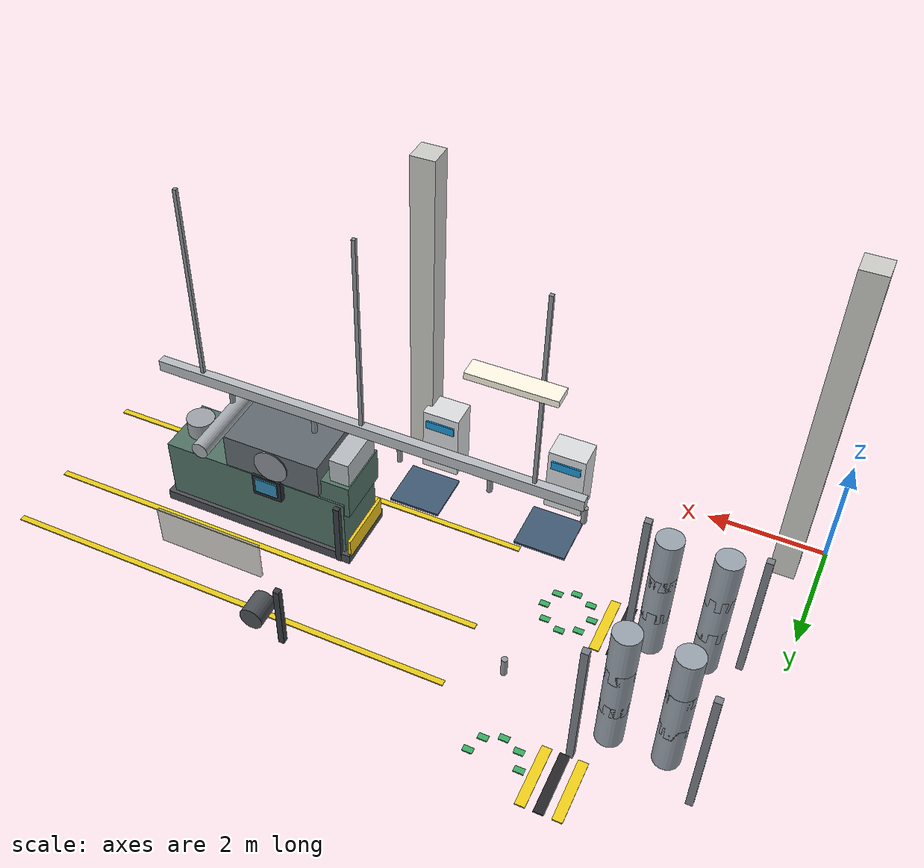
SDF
<sdf version="1.10">
 <world name="textile_mill">
  <model name="col_0">
   <static>true</static>
   <pose>0.550 0.550 3.000 0 0 0</pose>
   <link name="l">
    <collision name="c"><geometry><box><size>0.420 0.420 6.000</size></box></geometry></collision>
    <visual name="v">
     <geometry><box><size>0.420 0.420 6.000</size></box></geometry>
     <material>
      <ambient>0.800 0.800 0.780 1.0</ambient>
      <diffuse>0.800 0.800 0.780 1.0</diffuse>
      <specular>0.18 0.18 0.18 1</specular>
      <pbr><metal><roughness>0.85</roughness><metalness>0.0</metalness></metal></pbr>
     </material>
    </visual>
   </link>
  </model>
  <model name="col_2">
   <static>true</static>
   <pose>7.050 0.550 3.000 0 0 0</pose>
   <link name="l">
    <collision name="c"><geometry><box><size>0.420 0.420 6.000</size></box></geometry></collision>
    <visual name="v">
     <geometry><box><size>0.420 0.420 6.000</size></box></geometry>
     <material>
      <ambient>0.800 0.800 0.780 1.0</ambient>
      <diffuse>0.800 0.800 0.780 1.0</diffuse>
      <specular>0.18 0.18 0.18 1</specular>
      <pbr><metal><roughness>0.85</roughness><metalness>0.0</metalness></metal></pbr>
     </material>
    </visual>
   </link>
  </model>
  <model name="lamp_0_0">
   <static>true</static>
   <pose>4.200 4.000 5.280 0 0 0</pose>
   <link name="l">
    <collision name="c"><geometry><box><size>1.300 0.300 0.100</size></box></geometry></collision>
    <visual name="v">
     <geometry><box><size>1.300 0.300 0.100</size></box></geometry>
     <material>
      <ambient>1.000 0.980 0.900 1.0</ambient>
      <diffuse>1.000 0.980 0.900 1.0</diffuse>
      <specular>0.18 0.18 0.18 1</specular>
      <pbr><metal><roughness>0.3</roughness><metalness>0.0</metalness></metal></pbr>
     </material>
    </visual>
   </link>
  </model>
  <model name="cln_carding_0">
   <static>true</static>
   <pose>7.000 3.000 2.520 0 0 0</pose>
   <link name="l">
    <collision name="c"><geometry><box><size>7.300 0.150 0.200</size></box></geometry></collision>
    <visual name="v">
     <geometry><box><size>7.300 0.150 0.200</size></box></geometry>
     <material>
      <ambient>0.720 0.740 0.760 1.0</ambient>
      <diffuse>0.720 0.740 0.760 1.0</diffuse>
      <specular>0.18 0.18 0.18 1</specular>
      <pbr><metal><roughness>0.35</roughness><metalness>0.5</metalness></metal></pbr>
     </material>
    </visual>
   </link>
  </model>
  <model name="clnz_carding_0_0">
   <static>true</static>
   <pose>3.350 3.000 2.280 0.0000 0.0000 0.0000</pose>
   <link name="l">
    <collision name="c">
     <geometry><cylinder><radius>0.045</radius><length>0.300</length></cylinder></geometry>
    </collision>
    <visual name="v">
     <geometry><cylinder><radius>0.045</radius><length>0.300</length></cylinder></geometry>
     <material>
      <ambient>0.580 0.600 0.620 1.0</ambient>
      <diffuse>0.580 0.600 0.620 1.0</diffuse>
      <specular>0.18 0.18 0.18 1</specular>
      <pbr><metal><roughness>0.35</roughness><metalness>0.5</metalness></metal></pbr>
     </material>
    </visual>
   </link>
  </model>
  <model name="clnz_carding_0_1">
   <static>true</static>
   <pose>4.850 3.000 2.280 0.0000 0.0000 0.0000</pose>
   <link name="l">
    <collision name="c">
     <geometry><cylinder><radius>0.045</radius><length>0.300</length></cylinder></geometry>
    </collision>
    <visual name="v">
     <geometry><cylinder><radius>0.045</radius><length>0.300</length></cylinder></geometry>
     <material>
      <ambient>0.580 0.600 0.620 1.0</ambient>
      <diffuse>0.580 0.600 0.620 1.0</diffuse>
      <specular>0.18 0.18 0.18 1</specular>
      <pbr><metal><roughness>0.35</roughness><metalness>0.5</metalness></metal></pbr>
     </material>
    </visual>
   </link>
  </model>
  <model name="clnz_carding_0_2">
   <static>true</static>
   <pose>6.350 3.000 2.280 0.0000 0.0000 0.0000</pose>
   <link name="l">
    <collision name="c">
     <geometry><cylinder><radius>0.045</radius><length>0.300</length></cylinder></geometry>
    </collision>
    <visual name="v">
     <geometry><cylinder><radius>0.045</radius><length>0.300</length></cylinder></geometry>
     <material>
      <ambient>0.580 0.600 0.620 1.0</ambient>
      <diffuse>0.580 0.600 0.620 1.0</diffuse>
      <specular>0.18 0.18 0.18 1</specular>
      <pbr><metal><roughness>0.35</roughness><metalness>0.5</metalness></metal></pbr>
     </material>
    </visual>
   </link>
  </model>
  <model name="clnz_carding_0_3">
   <static>true</static>
   <pose>7.850 3.000 2.280 0.0000 0.0000 0.0000</pose>
   <link name="l">
    <collision name="c">
     <geometry><cylinder><radius>0.045</radius><length>0.300</length></cylinder></geometry>
    </collision>
    <visual name="v">
     <geometry><cylinder><radius>0.045</radius><length>0.300</length></cylinder></geometry>
     <material>
      <ambient>0.580 0.600 0.620 1.0</ambient>
      <diffuse>0.580 0.600 0.620 1.0</diffuse>
      <specular>0.18 0.18 0.18 1</specular>
      <pbr><metal><roughness>0.35</roughness><metalness>0.5</metalness></metal></pbr>
     </material>
    </visual>
   </link>
  </model>
  <model name="clnz_carding_0_4">
   <static>true</static>
   <pose>9.350 3.000 2.280 0.0000 0.0000 0.0000</pose>
   <link name="l">
    <collision name="c">
     <geometry><cylinder><radius>0.045</radius><length>0.300</length></cylinder></geometry>
    </collision>
    <visual name="v">
     <geometry><cylinder><radius>0.045</radius><length>0.300</length></cylinder></geometry>
     <material>
      <ambient>0.580 0.600 0.620 1.0</ambient>
      <diffuse>0.580 0.600 0.620 1.0</diffuse>
      <specular>0.18 0.18 0.18 1</specular>
      <pbr><metal><roughness>0.35</roughness><metalness>0.5</metalness></metal></pbr>
     </material>
    </visual>
   </link>
  </model>
  <model name="clnh_carding_0_0">
   <static>true</static>
   <pose>4.150 3.000 4.260 0 0 0</pose>
   <link name="l">
    <collision name="c"><geometry><box><size>0.060 0.060 3.480</size></box></geometry></collision>
    <visual name="v">
     <geometry><box><size>0.060 0.060 3.480</size></box></geometry>
     <material>
      <ambient>0.550 0.570 0.590 1.0</ambient>
      <diffuse>0.550 0.570 0.590 1.0</diffuse>
      <specular>0.18 0.18 0.18 1</specular>
      <pbr><metal><roughness>0.65</roughness><metalness>0.6</metalness></metal></pbr>
     </material>
    </visual>
   </link>
  </model>
  <model name="clnh_carding_0_1">
   <static>true</static>
   <pose>7.000 3.000 4.260 0 0 0</pose>
   <link name="l">
    <collision name="c"><geometry><box><size>0.060 0.060 3.480</size></box></geometry></collision>
    <visual name="v">
     <geometry><box><size>0.060 0.060 3.480</size></box></geometry>
     <material>
      <ambient>0.550 0.570 0.590 1.0</ambient>
      <diffuse>0.550 0.570 0.590 1.0</diffuse>
      <specular>0.18 0.18 0.18 1</specular>
      <pbr><metal><roughness>0.65</roughness><metalness>0.6</metalness></metal></pbr>
     </material>
    </visual>
   </link>
  </model>
  <model name="clnh_carding_0_2">
   <static>true</static>
   <pose>9.850 3.000 4.260 0 0 0</pose>
   <link name="l">
    <collision name="c"><geometry><box><size>0.060 0.060 3.480</size></box></geometry></collision>
    <visual name="v">
     <geometry><box><size>0.060 0.060 3.480</size></box></geometry>
     <material>
      <ambient>0.550 0.570 0.590 1.0</ambient>
      <diffuse>0.550 0.570 0.590 1.0</diffuse>
      <specular>0.18 0.18 0.18 1</specular>
      <pbr><metal><roughness>0.65</roughness><metalness>0.6</metalness></metal></pbr>
     </material>
    </visual>
   </link>
  </model>
  <model name="clnz_carding_1_0">
   <static>true</static>
   <pose>3.350 6.000 2.280 0.0000 0.0000 0.0000</pose>
   <link name="l">
    <collision name="c">
     <geometry><cylinder><radius>0.045</radius><length>0.300</length></cylinder></geometry>
    </collision>
    <visual name="v">
     <geometry><cylinder><radius>0.045</radius><length>0.300</length></cylinder></geometry>
     <material>
      <ambient>0.580 0.600 0.620 1.0</ambient>
      <diffuse>0.580 0.600 0.620 1.0</diffuse>
      <specular>0.18 0.18 0.18 1</specular>
      <pbr><metal><roughness>0.35</roughness><metalness>0.5</metalness></metal></pbr>
     </material>
    </visual>
   </link>
  </model>
  <model name="line_carding_3.0_a">
   <static>true</static>
   <pose>8.550 2.100 0.012 0 0 0</pose>
   <link name="l">
    <visual name="v">
     <geometry><box><size>7.900 0.100 0.020</size></box></geometry>
     <material>
      <ambient>0.920 0.800 0.100 1.0</ambient>
      <diffuse>0.920 0.800 0.100 1.0</diffuse>
      <specular>0.18 0.18 0.18 1</specular>
      <pbr><metal><roughness>0.65</roughness><metalness>0.0</metalness></metal></pbr>
     </material>
    </visual>
   </link>
  </model>
  <model name="line_carding_3.0_b">
   <static>true</static>
   <pose>8.550 3.900 0.012 0 0 0</pose>
   <link name="l">
    <visual name="v">
     <geometry><box><size>7.900 0.100 0.020</size></box></geometry>
     <material>
      <ambient>0.920 0.800 0.100 1.0</ambient>
      <diffuse>0.920 0.800 0.100 1.0</diffuse>
      <specular>0.18 0.18 0.18 1</specular>
      <pbr><metal><roughness>0.65</roughness><metalness>0.0</metalness></metal></pbr>
     </material>
    </visual>
   </link>
  </model>
  <model name="line_carding_6.0_a">
   <static>true</static>
   <pose>8.550 5.100 0.012 0 0 0</pose>
   <link name="l">
    <visual name="v">
     <geometry><box><size>7.900 0.100 0.020</size></box></geometry>
     <material>
      <ambient>0.920 0.800 0.100 1.0</ambient>
      <diffuse>0.920 0.800 0.100 1.0</diffuse>
      <specular>0.18 0.18 0.18 1</specular>
      <pbr><metal><roughness>0.65</roughness><metalness>0.0</metalness></metal></pbr>
     </material>
    </visual>
   </link>
  </model>
  <model name="slot_storage_empty_slot_0_0">
   <static>true</static>
   <pose>3.800 3.000 0.012 0 0 0</pose>
   <link name="l">
    <visual name="v">
     <geometry><box><size>0.160 0.100 0.020</size></box></geometry>
     <material>
      <ambient>0.220 0.680 0.380 1.0</ambient>
      <diffuse>0.220 0.680 0.380 1.0</diffuse>
      <specular>0.18 0.18 0.18 1</specular>
      <pbr><metal><roughness>0.65</roughness><metalness>0.0</metalness></metal></pbr>
     </material>
    </visual>
   </link>
  </model>
  <model name="slot_storage_empty_slot_0_1">
   <static>true</static>
   <pose>3.683 3.283 0.012 0 0 0</pose>
   <link name="l">
    <visual name="v">
     <geometry><box><size>0.160 0.100 0.020</size></box></geometry>
     <material>
      <ambient>0.220 0.680 0.380 1.0</ambient>
      <diffuse>0.220 0.680 0.380 1.0</diffuse>
      <specular>0.18 0.18 0.18 1</specular>
      <pbr><metal><roughness>0.65</roughness><metalness>0.0</metalness></metal></pbr>
     </material>
    </visual>
   </link>
  </model>
  <model name="slot_storage_empty_slot_0_2">
   <static>true</static>
   <pose>3.400 3.400 0.012 0 0 0</pose>
   <link name="l">
    <visual name="v">
     <geometry><box><size>0.160 0.100 0.020</size></box></geometry>
     <material>
      <ambient>0.220 0.680 0.380 1.0</ambient>
      <diffuse>0.220 0.680 0.380 1.0</diffuse>
      <specular>0.18 0.18 0.18 1</specular>
      <pbr><metal><roughness>0.65</roughness><metalness>0.0</metalness></metal></pbr>
     </material>
    </visual>
   </link>
  </model>
  <model name="slot_storage_empty_slot_0_3">
   <static>true</static>
   <pose>3.117 3.283 0.012 0 0 0</pose>
   <link name="l">
    <visual name="v">
     <geometry><box><size>0.160 0.100 0.020</size></box></geometry>
     <material>
      <ambient>0.220 0.680 0.380 1.0</ambient>
      <diffuse>0.220 0.680 0.380 1.0</diffuse>
      <specular>0.18 0.18 0.18 1</specular>
      <pbr><metal><roughness>0.65</roughness><metalness>0.0</metalness></metal></pbr>
     </material>
    </visual>
   </link>
  </model>
  <model name="slot_storage_empty_slot_0_4">
   <static>true</static>
   <pose>3.000 3.000 0.012 0 0 0</pose>
   <link name="l">
    <visual name="v">
     <geometry><box><size>0.160 0.100 0.020</size></box></geometry>
     <material>
      <ambient>0.220 0.680 0.380 1.0</ambient>
      <diffuse>0.220 0.680 0.380 1.0</diffuse>
      <specular>0.18 0.18 0.18 1</specular>
      <pbr><metal><roughness>0.65</roughness><metalness>0.0</metalness></metal></pbr>
     </material>
    </visual>
   </link>
  </model>
  <model name="slot_storage_empty_slot_0_5">
   <static>true</static>
   <pose>3.117 2.717 0.012 0 0 0</pose>
   <link name="l">
    <visual name="v">
     <geometry><box><size>0.160 0.100 0.020</size></box></geometry>
     <material>
      <ambient>0.220 0.680 0.380 1.0</ambient>
      <diffuse>0.220 0.680 0.380 1.0</diffuse>
      <specular>0.18 0.18 0.18 1</specular>
      <pbr><metal><roughness>0.65</roughness><metalness>0.0</metalness></metal></pbr>
     </material>
    </visual>
   </link>
  </model>
  <model name="slot_storage_empty_slot_0_6">
   <static>true</static>
   <pose>3.400 2.600 0.012 0 0 0</pose>
   <link name="l">
    <visual name="v">
     <geometry><box><size>0.160 0.100 0.020</size></box></geometry>
     <material>
      <ambient>0.220 0.680 0.380 1.0</ambient>
      <diffuse>0.220 0.680 0.380 1.0</diffuse>
      <specular>0.18 0.18 0.18 1</specular>
      <pbr><metal><roughness>0.65</roughness><metalness>0.0</metalness></metal></pbr>
     </material>
    </visual>
   </link>
  </model>
  <model name="slot_storage_empty_slot_0_7">
   <static>true</static>
   <pose>3.683 2.717 0.012 0 0 0</pose>
   <link name="l">
    <visual name="v">
     <geometry><box><size>0.160 0.100 0.020</size></box></geometry>
     <material>
      <ambient>0.220 0.680 0.380 1.0</ambient>
      <diffuse>0.220 0.680 0.380 1.0</diffuse>
      <specular>0.18 0.18 0.18 1</specular>
      <pbr><metal><roughness>0.65</roughness><metalness>0.0</metalness></metal></pbr>
     </material>
    </visual>
   </link>
  </model>
  <model name="slot_storage_empty_slot_1_0">
   <static>true</static>
   <pose>3.800 6.000 0.012 0 0 0</pose>
   <link name="l">
    <visual name="v">
     <geometry><box><size>0.160 0.100 0.020</size></box></geometry>
     <material>
      <ambient>0.220 0.680 0.380 1.0</ambient>
      <diffuse>0.220 0.680 0.380 1.0</diffuse>
      <specular>0.18 0.18 0.18 1</specular>
      <pbr><metal><roughness>0.65</roughness><metalness>0.0</metalness></metal></pbr>
     </material>
    </visual>
   </link>
  </model>
  <model name="slot_storage_empty_slot_1_4">
   <static>true</static>
   <pose>3.000 6.000 0.012 0 0 0</pose>
   <link name="l">
    <visual name="v">
     <geometry><box><size>0.160 0.100 0.020</size></box></geometry>
     <material>
      <ambient>0.220 0.680 0.380 1.0</ambient>
      <diffuse>0.220 0.680 0.380 1.0</diffuse>
      <specular>0.18 0.18 0.18 1</specular>
      <pbr><metal><roughness>0.65</roughness><metalness>0.0</metalness></metal></pbr>
     </material>
    </visual>
   </link>
  </model>
  <model name="slot_storage_empty_slot_1_5">
   <static>true</static>
   <pose>3.117 5.717 0.012 0 0 0</pose>
   <link name="l">
    <visual name="v">
     <geometry><box><size>0.160 0.100 0.020</size></box></geometry>
     <material>
      <ambient>0.220 0.680 0.380 1.0</ambient>
      <diffuse>0.220 0.680 0.380 1.0</diffuse>
      <specular>0.18 0.18 0.18 1</specular>
      <pbr><metal><roughness>0.65</roughness><metalness>0.0</metalness></metal></pbr>
     </material>
    </visual>
   </link>
  </model>
  <model name="slot_storage_empty_slot_1_6">
   <static>true</static>
   <pose>3.400 5.600 0.012 0 0 0</pose>
   <link name="l">
    <visual name="v">
     <geometry><box><size>0.160 0.100 0.020</size></box></geometry>
     <material>
      <ambient>0.220 0.680 0.380 1.0</ambient>
      <diffuse>0.220 0.680 0.380 1.0</diffuse>
      <specular>0.18 0.18 0.18 1</specular>
      <pbr><metal><roughness>0.65</roughness><metalness>0.0</metalness></metal></pbr>
     </material>
    </visual>
   </link>
  </model>
  <model name="slot_storage_empty_slot_1_7">
   <static>true</static>
   <pose>3.683 5.717 0.012 0 0 0</pose>
   <link name="l">
    <visual name="v">
     <geometry><box><size>0.160 0.100 0.020</size></box></geometry>
     <material>
      <ambient>0.220 0.680 0.380 1.0</ambient>
      <diffuse>0.220 0.680 0.380 1.0</diffuse>
      <specular>0.18 0.18 0.18 1</specular>
      <pbr><metal><roughness>0.65</roughness><metalness>0.0</metalness></metal></pbr>
     </material>
    </visual>
   </link>
  </model>
  <model name="hz_empty_0_0">
   <static>true</static>
   <pose>2.780 3.000 0.012 0 0 0</pose>
   <link name="l">
    <visual name="v">
     <geometry><box><size>0.160 1.050 0.020</size></box></geometry>
     <material>
      <ambient>0.950 0.820 0.100 1.0</ambient>
      <diffuse>0.950 0.820 0.100 1.0</diffuse>
      <specular>0.18 0.18 0.18 1</specular>
      <pbr><metal><roughness>0.65</roughness><metalness>0.0</metalness></metal></pbr>
     </material>
    </visual>
   </link>
  </model>
  <model name="hz_empty_0_1">
   <static>true</static>
   <pose>2.500 3.000 0.012 0 0 0</pose>
   <link name="l">
    <visual name="v">
     <geometry><box><size>0.160 1.050 0.020</size></box></geometry>
     <material>
      <ambient>0.150 0.150 0.160 1.0</ambient>
      <diffuse>0.150 0.150 0.160 1.0</diffuse>
      <specular>0.18 0.18 0.18 1</specular>
      <pbr><metal><roughness>0.65</roughness><metalness>0.0</metalness></metal></pbr>
     </material>
    </visual>
   </link>
  </model>
  <model name="hz_empty_0_2">
   <static>true</static>
   <pose>2.220 3.000 0.012 0 0 0</pose>
   <link name="l">
    <visual name="v">
     <geometry><box><size>0.160 1.050 0.020</size></box></geometry>
     <material>
      <ambient>0.950 0.820 0.100 1.0</ambient>
      <diffuse>0.950 0.820 0.100 1.0</diffuse>
      <specular>0.18 0.18 0.18 1</specular>
      <pbr><metal><roughness>0.65</roughness><metalness>0.0</metalness></metal></pbr>
     </material>
    </visual>
   </link>
  </model>
  <model name="hz_empty_1_0">
   <static>true</static>
   <pose>2.780 6.000 0.012 0 0 0</pose>
   <link name="l">
    <visual name="v">
     <geometry><box><size>0.160 1.050 0.020</size></box></geometry>
     <material>
      <ambient>0.950 0.820 0.100 1.0</ambient>
      <diffuse>0.950 0.820 0.100 1.0</diffuse>
      <specular>0.18 0.18 0.18 1</specular>
      <pbr><metal><roughness>0.65</roughness><metalness>0.0</metalness></metal></pbr>
     </material>
    </visual>
   </link>
  </model>
  <model name="hz_empty_1_1">
   <static>true</static>
   <pose>2.500 6.000 0.012 0 0 0</pose>
   <link name="l">
    <visual name="v">
     <geometry><box><size>0.160 1.050 0.020</size></box></geometry>
     <material>
      <ambient>0.150 0.150 0.160 1.0</ambient>
      <diffuse>0.150 0.150 0.160 1.0</diffuse>
      <specular>0.18 0.18 0.18 1</specular>
      <pbr><metal><roughness>0.65</roughness><metalness>0.0</metalness></metal></pbr>
     </material>
    </visual>
   </link>
  </model>
  <model name="hz_empty_1_2">
   <static>true</static>
   <pose>2.220 6.000 0.012 0 0 0</pose>
   <link name="l">
    <visual name="v">
     <geometry><box><size>0.160 1.050 0.020</size></box></geometry>
     <material>
      <ambient>0.950 0.820 0.100 1.0</ambient>
      <diffuse>0.950 0.820 0.100 1.0</diffuse>
      <specular>0.18 0.18 0.18 1</specular>
      <pbr><metal><roughness>0.65</roughness><metalness>0.0</metalness></metal></pbr>
     </material>
    </visual>
   </link>
  </model>
  <model name="carding_machine_0_plinth">
   <static>true</static>
   <pose>8.750 3.000 0.090 0 0 0</pose>
   <link name="l">
    <collision name="c"><geometry><box><size>3.500 1.200 0.180</size></box></geometry></collision>
    <visual name="v">
     <geometry><box><size>3.500 1.200 0.180</size></box></geometry>
     <material>
      <ambient>0.300 0.310 0.330 1.0</ambient>
      <diffuse>0.300 0.310 0.330 1.0</diffuse>
      <specular>0.18 0.18 0.18 1</specular>
      <pbr><metal><roughness>0.6</roughness><metalness>0.4</metalness></metal></pbr>
     </material>
    </visual>
   </link>
  </model>
  <model name="carding_machine_0_body">
   <static>true</static>
   <pose>8.750 3.000 0.720 0 0 0</pose>
   <link name="l">
    <collision name="c"><geometry><box><size>3.300 1.060 1.080</size></box></geometry></collision>
    <visual name="v">
     <geometry><box><size>3.300 1.060 1.080</size></box></geometry>
     <material>
      <ambient>0.320 0.450 0.400 1.0</ambient>
      <diffuse>0.320 0.450 0.400 1.0</diffuse>
      <specular>0.18 0.18 0.18 1</specular>
      <pbr><metal><roughness>0.45</roughness><metalness>0.25</metalness></metal></pbr>
     </material>
    </visual>
   </link>
  </model>
  <model name="carding_machine_0_housing">
   <static>true</static>
   <pose>8.350 3.000 1.660 0 0 0</pose>
   <link name="l">
    <collision name="c"><geometry><box><size>1.700 1.180 0.620</size></box></geometry></collision>
    <visual name="v">
     <geometry><box><size>1.700 1.180 0.620</size></box></geometry>
     <material>
      <ambient>0.380 0.420 0.440 1.0</ambient>
      <diffuse>0.380 0.420 0.440 1.0</diffuse>
      <specular>0.18 0.18 0.18 1</specular>
      <pbr><metal><roughness>0.4</roughness><metalness>0.45</metalness></metal></pbr>
     </material>
    </visual>
   </link>
  </model>
  <model name="carding_machine_0_cylinder">
   <static>true</static>
   <pose>8.350 3.000 1.660 1.5708 0.0000 0.0000</pose>
   <link name="l">
    <collision name="c">
     <geometry><cylinder><radius>0.300</radius><length>1.220</length></cylinder></geometry>
    </collision>
    <visual name="v">
     <geometry><cylinder><radius>0.300</radius><length>1.220</length></cylinder></geometry>
     <material>
      <ambient>0.550 0.570 0.600 1.0</ambient>
      <diffuse>0.550 0.570 0.600 1.0</diffuse>
      <specular>0.18 0.18 0.18 1</specular>
      <pbr><metal><roughness>0.25</roughness><metalness>0.7</metalness></metal></pbr>
     </material>
    </visual>
   </link>
  </model>
  <model name="carding_machine_0_feed">
   <static>true</static>
   <pose>7.340 3.000 1.330 0 0 0</pose>
   <link name="l">
    <collision name="c"><geometry><box><size>0.660 1.000 0.620</size></box></geometry></collision>
    <visual name="v">
     <geometry><box><size>0.660 1.000 0.620</size></box></geometry>
     <material>
      <ambient>0.320 0.450 0.400 1.0</ambient>
      <diffuse>0.320 0.450 0.400 1.0</diffuse>
      <specular>0.18 0.18 0.18 1</specular>
      <pbr><metal><roughness>0.5</roughness><metalness>0.0</metalness></metal></pbr>
     </material>
    </visual>
   </link>
  </model>
  <model name="carding_machine_0_feed_hopper">
   <static>true</static>
   <pose>7.200 3.000 1.860 0 0 0</pose>
   <link name="l">
    <collision name="c"><geometry><box><size>0.340 0.860 0.440</size></box></geometry></collision>
    <visual name="v">
     <geometry><box><size>0.340 0.860 0.440</size></box></geometry>
     <material>
      <ambient>0.720 0.740 0.760 1.0</ambient>
      <diffuse>0.720 0.740 0.760 1.0</diffuse>
      <specular>0.18 0.18 0.18 1</specular>
      <pbr><metal><roughness>0.65</roughness><metalness>0.0</metalness></metal></pbr>
     </material>
    </visual>
   </link>
  </model>
  <model name="carding_machine_0_coiler">
   <static>true</static>
   <pose>10.050 3.000 1.300 0.0000 0.0000 0.0000</pose>
   <link name="l">
    <collision name="c">
     <geometry><cylinder><radius>0.240</radius><length>0.520</length></cylinder></geometry>
    </collision>
    <visual name="v">
     <geometry><cylinder><radius>0.240</radius><length>0.520</length></cylinder></geometry>
     <material>
      <ambient>0.620 0.640 0.660 1.0</ambient>
      <diffuse>0.620 0.640 0.660 1.0</diffuse>
      <specular>0.18 0.18 0.18 1</specular>
      <pbr><metal><roughness>0.3</roughness><metalness>0.6</metalness></metal></pbr>
     </material>
    </visual>
   </link>
  </model>
  <model name="carding_machine_0_panel">
   <static>true</static>
   <pose>8.450 3.580 1.160 0 0 0</pose>
   <link name="l">
    <collision name="c"><geometry><box><size>0.520 0.100 0.420</size></box></geometry></collision>
    <visual name="v">
     <geometry><box><size>0.520 0.100 0.420</size></box></geometry>
     <material>
      <ambient>0.160 0.170 0.190 1.0</ambient>
      <diffuse>0.160 0.170 0.190 1.0</diffuse>
      <specular>0.18 0.18 0.18 1</specular>
      <pbr><metal><roughness>0.65</roughness><metalness>0.0</metalness></metal></pbr>
     </material>
    </visual>
   </link>
  </model>
  <model name="carding_machine_0_screen">
   <static>true</static>
   <pose>8.450 3.640 1.180 0 0 0</pose>
   <link name="l">
    <collision name="c"><geometry><box><size>0.400 0.030 0.280</size></box></geometry></collision>
    <visual name="v">
     <geometry><box><size>0.400 0.030 0.280</size></box></geometry>
     <material>
      <ambient>0.200 0.550 0.720 1.0</ambient>
      <diffuse>0.200 0.550 0.720 1.0</diffuse>
      <specular>0.18 0.18 0.18 1</specular>
      <pbr><metal><roughness>0.2</roughness><metalness>0.0</metalness></metal></pbr>
     </material>
    </visual>
   </link>
  </model>
  <model name="carding_machine_0_motor">
   <static>true</static>
   <pose>7.700 2.300 0.340 1.5708 0.0000 0.0000</pose>
   <link name="l">
    <collision name="c">
     <geometry><cylinder><radius>0.200</radius><length>0.440</length></cylinder></geometry>
    </collision>
    <visual name="v">
     <geometry><cylinder><radius>0.200</radius><length>0.440</length></cylinder></geometry>
     <material>
      <ambient>0.300 0.320 0.340 1.0</ambient>
      <diffuse>0.300 0.320 0.340 1.0</diffuse>
      <specular>0.18 0.18 0.18 1</specular>
      <pbr><metal><roughness>0.65</roughness><metalness>0.6</metalness></metal></pbr>
     </material>
    </visual>
   </link>
  </model>
  <model name="carding_machine_0_post_a_l">
   <static>true</static>
   <pose>7.200 2.440 0.600 0 0 0</pose>
   <link name="l">
    <collision name="c"><geometry><box><size>0.100 0.100 1.200</size></box></geometry></collision>
    <visual name="v">
     <geometry><box><size>0.100 0.100 1.200</size></box></geometry>
     <material>
      <ambient>0.220 0.240 0.260 1.0</ambient>
      <diffuse>0.220 0.240 0.260 1.0</diffuse>
      <specular>0.18 0.18 0.18 1</specular>
      <pbr><metal><roughness>0.65</roughness><metalness>0.5</metalness></metal></pbr>
     </material>
    </visual>
   </link>
  </model>
  <model name="carding_machine_0_post_b_l">
   <static>true</static>
   <pose>7.200 3.560 0.600 0 0 0</pose>
   <link name="l">
    <collision name="c"><geometry><box><size>0.100 0.100 1.200</size></box></geometry></collision>
    <visual name="v">
     <geometry><box><size>0.100 0.100 1.200</size></box></geometry>
     <material>
      <ambient>0.220 0.240 0.260 1.0</ambient>
      <diffuse>0.220 0.240 0.260 1.0</diffuse>
      <specular>0.18 0.18 0.18 1</specular>
      <pbr><metal><roughness>0.65</roughness><metalness>0.5</metalness></metal></pbr>
     </material>
    </visual>
   </link>
  </model>
  <model name="carding_machine_0_guard">
   <static>true</static>
   <pose>8.350 2.380 1.660 0 0 0</pose>
   <link name="l">
    <collision name="c"><geometry><box><size>1.740 0.050 0.660</size></box></geometry></collision>
    <visual name="v">
     <geometry><box><size>1.740 0.050 0.660</size></box></geometry>
     <material>
      <ambient>0.720 0.740 0.700 0.75</ambient>
      <diffuse>0.720 0.740 0.700 0.75</diffuse>
      <specular>0.18 0.18 0.18 1</specular>
      <pbr><metal><roughness>0.25</roughness><metalness>0.0</metalness></metal></pbr>
     </material>
    </visual>
   </link>
  </model>
  <model name="carding_machine_0_duct">
   <static>true</static>
   <pose>9.300 3.400 2.050 1.5708 0.0000 0.0000</pose>
   <link name="l">
    <collision name="c">
     <geometry><cylinder><radius>0.140</radius><length>1.400</length></cylinder></geometry>
    </collision>
    <visual name="v">
     <geometry><cylinder><radius>0.140</radius><length>1.400</length></cylinder></geometry>
     <material>
      <ambient>0.660 0.680 0.700 1.0</ambient>
      <diffuse>0.660 0.680 0.700 1.0</diffuse>
      <specular>0.18 0.18 0.18 1</specular>
      <pbr><metal><roughness>0.35</roughness><metalness>0.55</metalness></metal></pbr>
     </material>
    </visual>
   </link>
  </model>
  <model name="carding_machine_0_hazard">
   <static>true</static>
   <pose>7.020 3.000 0.300 0 0 0</pose>
   <link name="l">
    <collision name="c"><geometry><box><size>0.050 1.100 0.340</size></box></geometry></collision>
    <visual name="v">
     <geometry><box><size>0.050 1.100 0.340</size></box></geometry>
     <material>
      <ambient>0.940 0.780 0.100 1.0</ambient>
      <diffuse>0.940 0.780 0.100 1.0</diffuse>
      <specular>0.18 0.18 0.18 1</specular>
      <pbr><metal><roughness>0.65</roughness><metalness>0.0</metalness></metal></pbr>
     </material>
    </visual>
   </link>
  </model>
  <model name="carding_machine_1_motor">
   <static>true</static>
   <pose>7.700 5.300 0.340 1.5708 0.0000 0.0000</pose>
   <link name="l">
    <collision name="c">
     <geometry><cylinder><radius>0.200</radius><length>0.440</length></cylinder></geometry>
    </collision>
    <visual name="v">
     <geometry><cylinder><radius>0.200</radius><length>0.440</length></cylinder></geometry>
     <material>
      <ambient>0.300 0.320 0.340 1.0</ambient>
      <diffuse>0.300 0.320 0.340 1.0</diffuse>
      <specular>0.18 0.18 0.18 1</specular>
      <pbr><metal><roughness>0.65</roughness><metalness>0.6</metalness></metal></pbr>
     </material>
    </visual>
   </link>
  </model>
  <model name="carding_machine_1_post_a_l">
   <static>true</static>
   <pose>7.200 5.440 0.600 0 0 0</pose>
   <link name="l">
    <collision name="c"><geometry><box><size>0.100 0.100 1.200</size></box></geometry></collision>
    <visual name="v">
     <geometry><box><size>0.100 0.100 1.200</size></box></geometry>
     <material>
      <ambient>0.220 0.240 0.260 1.0</ambient>
      <diffuse>0.220 0.240 0.260 1.0</diffuse>
      <specular>0.18 0.18 0.18 1</specular>
      <pbr><metal><roughness>0.65</roughness><metalness>0.5</metalness></metal></pbr>
     </material>
    </visual>
   </link>
  </model>
  <model name="carding_machine_1_guard">
   <static>true</static>
   <pose>8.350 5.380 1.660 0 0 0</pose>
   <link name="l">
    <collision name="c"><geometry><box><size>1.740 0.050 0.660</size></box></geometry></collision>
    <visual name="v">
     <geometry><box><size>1.740 0.050 0.660</size></box></geometry>
     <material>
      <ambient>0.720 0.740 0.700 0.75</ambient>
      <diffuse>0.720 0.740 0.700 0.75</diffuse>
      <specular>0.18 0.18 0.18 1</specular>
      <pbr><metal><roughness>0.25</roughness><metalness>0.0</metalness></metal></pbr>
     </material>
    </visual>
   </link>
  </model>
  <model name="rack_empty_can_0_0_a">
   <static>true</static>
   <pose>1.132 3.550 1.120 0.0000 0.0000 0.0000</pose>
   <link name="l">
    <collision name="c">
     <geometry><cylinder><radius>0.205</radius><length>0.900</length></cylinder></geometry>
    </collision>
    <visual name="v">
     <geometry><cylinder><radius>0.205</radius><length>0.900</length></cylinder></geometry>
     <material>
      <ambient>0.600 0.640 0.680 1.0</ambient>
      <diffuse>0.600 0.640 0.680 1.0</diffuse>
      <specular>0.18 0.18 0.18 1</specular>
      <pbr><metal><roughness>0.6</roughness><metalness>0.0</metalness></metal></pbr>
     </material>
    </visual>
   </link>
  </model>
  <model name="rack_empty_can_0_0_b">
   <static>true</static>
   <pose>1.968 3.550 1.120 0.0000 0.0000 0.0000</pose>
   <link name="l">
    <collision name="c">
     <geometry><cylinder><radius>0.205</radius><length>0.900</length></cylinder></geometry>
    </collision>
    <visual name="v">
     <geometry><cylinder><radius>0.205</radius><length>0.900</length></cylinder></geometry>
     <material>
      <ambient>0.600 0.640 0.680 1.0</ambient>
      <diffuse>0.600 0.640 0.680 1.0</diffuse>
      <specular>0.18 0.18 0.18 1</specular>
      <pbr><metal><roughness>0.6</roughness><metalness>0.0</metalness></metal></pbr>
     </material>
    </visual>
   </link>
  </model>
  <model name="rack_empty_can_0_1_a">
   <static>true</static>
   <pose>1.132 5.330 1.120 0.0000 0.0000 0.0000</pose>
   <link name="l">
    <collision name="c">
     <geometry><cylinder><radius>0.205</radius><length>0.900</length></cylinder></geometry>
    </collision>
    <visual name="v">
     <geometry><cylinder><radius>0.205</radius><length>0.900</length></cylinder></geometry>
     <material>
      <ambient>0.600 0.640 0.680 1.0</ambient>
      <diffuse>0.600 0.640 0.680 1.0</diffuse>
      <specular>0.18 0.18 0.18 1</specular>
      <pbr><metal><roughness>0.6</roughness><metalness>0.0</metalness></metal></pbr>
     </material>
    </visual>
   </link>
  </model>
  <model name="rack_empty_can_0_1_b">
   <static>true</static>
   <pose>1.968 5.330 1.120 0.0000 0.0000 0.0000</pose>
   <link name="l">
    <collision name="c">
     <geometry><cylinder><radius>0.205</radius><length>0.900</length></cylinder></geometry>
    </collision>
    <visual name="v">
     <geometry><cylinder><radius>0.205</radius><length>0.900</length></cylinder></geometry>
     <material>
      <ambient>0.600 0.640 0.680 1.0</ambient>
      <diffuse>0.600 0.640 0.680 1.0</diffuse>
      <specular>0.18 0.18 0.18 1</specular>
      <pbr><metal><roughness>0.6</roughness><metalness>0.0</metalness></metal></pbr>
     </material>
    </visual>
   </link>
  </model>
  <model name="rack_empty_can_1_0_a">
   <static>true</static>
   <pose>1.132 3.550 1.820 0.0000 0.0000 0.0000</pose>
   <link name="l">
    <collision name="c">
     <geometry><cylinder><radius>0.205</radius><length>0.900</length></cylinder></geometry>
    </collision>
    <visual name="v">
     <geometry><cylinder><radius>0.205</radius><length>0.900</length></cylinder></geometry>
     <material>
      <ambient>0.600 0.640 0.680 1.0</ambient>
      <diffuse>0.600 0.640 0.680 1.0</diffuse>
      <specular>0.18 0.18 0.18 1</specular>
      <pbr><metal><roughness>0.6</roughness><metalness>0.0</metalness></metal></pbr>
     </material>
    </visual>
   </link>
  </model>
  <model name="rack_empty_can_1_0_b">
   <static>true</static>
   <pose>1.968 3.550 1.820 0.0000 0.0000 0.0000</pose>
   <link name="l">
    <collision name="c">
     <geometry><cylinder><radius>0.205</radius><length>0.900</length></cylinder></geometry>
    </collision>
    <visual name="v">
     <geometry><cylinder><radius>0.205</radius><length>0.900</length></cylinder></geometry>
     <material>
      <ambient>0.600 0.640 0.680 1.0</ambient>
      <diffuse>0.600 0.640 0.680 1.0</diffuse>
      <specular>0.18 0.18 0.18 1</specular>
      <pbr><metal><roughness>0.6</roughness><metalness>0.0</metalness></metal></pbr>
     </material>
    </visual>
   </link>
  </model>
  <model name="rack_empty_can_1_1_a">
   <static>true</static>
   <pose>1.132 5.330 1.820 0.0000 0.0000 0.0000</pose>
   <link name="l">
    <collision name="c">
     <geometry><cylinder><radius>0.205</radius><length>0.900</length></cylinder></geometry>
    </collision>
    <visual name="v">
     <geometry><cylinder><radius>0.205</radius><length>0.900</length></cylinder></geometry>
     <material>
      <ambient>0.600 0.640 0.680 1.0</ambient>
      <diffuse>0.600 0.640 0.680 1.0</diffuse>
      <specular>0.18 0.18 0.18 1</specular>
      <pbr><metal><roughness>0.6</roughness><metalness>0.0</metalness></metal></pbr>
     </material>
    </visual>
   </link>
  </model>
  <model name="rack_empty_can_1_1_b">
   <static>true</static>
   <pose>1.968 5.330 1.820 0.0000 0.0000 0.0000</pose>
   <link name="l">
    <collision name="c">
     <geometry><cylinder><radius>0.205</radius><length>0.900</length></cylinder></geometry>
    </collision>
    <visual name="v">
     <geometry><cylinder><radius>0.205</radius><length>0.900</length></cylinder></geometry>
     <material>
      <ambient>0.600 0.640 0.680 1.0</ambient>
      <diffuse>0.600 0.640 0.680 1.0</diffuse>
      <specular>0.18 0.18 0.18 1</specular>
      <pbr><metal><roughness>0.6</roughness><metalness>0.0</metalness></metal></pbr>
     </material>
    </visual>
   </link>
  </model>
  <model name="rack_empty_can_2_0_a">
   <static>true</static>
   <pose>1.132 3.550 2.520 0.0000 0.0000 0.0000</pose>
   <link name="l">
    <collision name="c">
     <geometry><cylinder><radius>0.205</radius><length>0.900</length></cylinder></geometry>
    </collision>
    <visual name="v">
     <geometry><cylinder><radius>0.205</radius><length>0.900</length></cylinder></geometry>
     <material>
      <ambient>0.600 0.640 0.680 1.0</ambient>
      <diffuse>0.600 0.640 0.680 1.0</diffuse>
      <specular>0.18 0.18 0.18 1</specular>
      <pbr><metal><roughness>0.6</roughness><metalness>0.0</metalness></metal></pbr>
     </material>
    </visual>
   </link>
  </model>
  <model name="rack_empty_can_2_0_b">
   <static>true</static>
   <pose>1.968 3.550 2.520 0.0000 0.0000 0.0000</pose>
   <link name="l">
    <collision name="c">
     <geometry><cylinder><radius>0.205</radius><length>0.900</length></cylinder></geometry>
    </collision>
    <visual name="v">
     <geometry><cylinder><radius>0.205</radius><length>0.900</length></cylinder></geometry>
     <material>
      <ambient>0.600 0.640 0.680 1.0</ambient>
      <diffuse>0.600 0.640 0.680 1.0</diffuse>
      <specular>0.18 0.18 0.18 1</specular>
      <pbr><metal><roughness>0.6</roughness><metalness>0.0</metalness></metal></pbr>
     </material>
    </visual>
   </link>
  </model>
  <model name="rack_empty_can_2_1_a">
   <static>true</static>
   <pose>1.132 5.330 2.520 0.0000 0.0000 0.0000</pose>
   <link name="l">
    <collision name="c">
     <geometry><cylinder><radius>0.205</radius><length>0.900</length></cylinder></geometry>
    </collision>
    <visual name="v">
     <geometry><cylinder><radius>0.205</radius><length>0.900</length></cylinder></geometry>
     <material>
      <ambient>0.600 0.640 0.680 1.0</ambient>
      <diffuse>0.600 0.640 0.680 1.0</diffuse>
      <specular>0.18 0.18 0.18 1</specular>
      <pbr><metal><roughness>0.6</roughness><metalness>0.0</metalness></metal></pbr>
     </material>
    </visual>
   </link>
  </model>
  <model name="rack_empty_can_2_1_b">
   <static>true</static>
   <pose>1.968 5.330 2.520 0.0000 0.0000 0.0000</pose>
   <link name="l">
    <collision name="c">
     <geometry><cylinder><radius>0.205</radius><length>0.900</length></cylinder></geometry>
    </collision>
    <visual name="v">
     <geometry><cylinder><radius>0.205</radius><length>0.900</length></cylinder></geometry>
     <material>
      <ambient>0.600 0.640 0.680 1.0</ambient>
      <diffuse>0.600 0.640 0.680 1.0</diffuse>
      <specular>0.18 0.18 0.18 1</specular>
      <pbr><metal><roughness>0.6</roughness><metalness>0.0</metalness></metal></pbr>
     </material>
    </visual>
   </link>
  </model>
  <model name="rack_empty_post_0_a">
   <static>true</static>
   <pose>0.660 2.850 1.220 0 0 0</pose>
   <link name="l">
    <collision name="c"><geometry><box><size>0.110 0.110 2.440</size></box></geometry></collision>
    <visual name="v">
     <geometry><box><size>0.110 0.110 2.440</size></box></geometry>
     <material>
      <ambient>0.480 0.500 0.530 1.0</ambient>
      <diffuse>0.480 0.500 0.530 1.0</diffuse>
      <specular>0.18 0.18 0.18 1</specular>
      <pbr><metal><roughness>0.65</roughness><metalness>0.5</metalness></metal></pbr>
     </material>
    </visual>
   </link>
  </model>
  <model name="rack_empty_post_0_b">
   <static>true</static>
   <pose>2.440 2.850 1.220 0 0 0</pose>
   <link name="l">
    <collision name="c"><geometry><box><size>0.110 0.110 2.440</size></box></geometry></collision>
    <visual name="v">
     <geometry><box><size>0.110 0.110 2.440</size></box></geometry>
     <material>
      <ambient>0.480 0.500 0.530 1.0</ambient>
      <diffuse>0.480 0.500 0.530 1.0</diffuse>
      <specular>0.18 0.18 0.18 1</specular>
      <pbr><metal><roughness>0.65</roughness><metalness>0.5</metalness></metal></pbr>
     </material>
    </visual>
   </link>
  </model>
  <model name="rack_empty_post_1_a">
   <static>true</static>
   <pose>0.660 5.425 1.220 0 0 0</pose>
   <link name="l">
    <collision name="c"><geometry><box><size>0.110 0.110 2.440</size></box></geometry></collision>
    <visual name="v">
     <geometry><box><size>0.110 0.110 2.440</size></box></geometry>
     <material>
      <ambient>0.480 0.500 0.530 1.0</ambient>
      <diffuse>0.480 0.500 0.530 1.0</diffuse>
      <specular>0.18 0.18 0.18 1</specular>
      <pbr><metal><roughness>0.65</roughness><metalness>0.5</metalness></metal></pbr>
     </material>
    </visual>
   </link>
  </model>
  <model name="rack_empty_post_1_b">
   <static>true</static>
   <pose>2.440 5.425 1.220 0 0 0</pose>
   <link name="l">
    <collision name="c"><geometry><box><size>0.110 0.110 2.440</size></box></geometry></collision>
    <visual name="v">
     <geometry><box><size>0.110 0.110 2.440</size></box></geometry>
     <material>
      <ambient>0.480 0.500 0.530 1.0</ambient>
      <diffuse>0.480 0.500 0.530 1.0</diffuse>
      <specular>0.18 0.18 0.18 1</specular>
      <pbr><metal><roughness>0.65</roughness><metalness>0.5</metalness></metal></pbr>
     </material>
    </visual>
   </link>
  </model>
  <model name="charger_0_cab">
   <static>true</static>
   <pose>4.300 0.700 0.620 0 0 0</pose>
   <link name="l">
    <collision name="c"><geometry><box><size>0.660 0.500 1.240</size></box></geometry></collision>
    <visual name="v">
     <geometry><box><size>0.660 0.500 1.240</size></box></geometry>
     <material>
      <ambient>0.860 0.870 0.880 1.0</ambient>
      <diffuse>0.860 0.870 0.880 1.0</diffuse>
      <specular>0.18 0.18 0.18 1</specular>
      <pbr><metal><roughness>0.5</roughness><metalness>0.0</metalness></metal></pbr>
     </material>
    </visual>
   </link>
  </model>
  <model name="charger_0_strip">
   <static>true</static>
   <pose>4.300 0.970 1.000 0 0 0</pose>
   <link name="l">
    <collision name="c"><geometry><box><size>0.520 0.030 0.160</size></box></geometry></collision>
    <visual name="v">
     <geometry><box><size>0.520 0.030 0.160</size></box></geometry>
     <material>
      <ambient>0.100 0.600 0.850 1.0</ambient>
      <diffuse>0.100 0.600 0.850 1.0</diffuse>
      <specular>0.18 0.18 0.18 1</specular>
      <pbr><metal><roughness>0.3</roughness><metalness>0.0</metalness></metal></pbr>
     </material>
    </visual>
   </link>
  </model>
  <model name="charger_0_base">
   <static>true</static>
   <pose>4.300 1.550 0.020 0 0 0</pose>
   <link name="l">
    <collision name="c"><geometry><box><size>0.900 0.900 0.040</size></box></geometry></collision>
    <visual name="v">
     <geometry><box><size>0.900 0.900 0.040</size></box></geometry>
     <material>
      <ambient>0.250 0.350 0.450 1.0</ambient>
      <diffuse>0.250 0.350 0.450 1.0</diffuse>
      <specular>0.18 0.18 0.18 1</specular>
      <pbr><metal><roughness>0.65</roughness><metalness>0.0</metalness></metal></pbr>
     </material>
    </visual>
   </link>
  </model>
  <model name="charger_1_cab">
   <static>true</static>
   <pose>6.600 0.700 0.620 0 0 0</pose>
   <link name="l">
    <collision name="c"><geometry><box><size>0.660 0.500 1.240</size></box></geometry></collision>
    <visual name="v">
     <geometry><box><size>0.660 0.500 1.240</size></box></geometry>
     <material>
      <ambient>0.860 0.870 0.880 1.0</ambient>
      <diffuse>0.860 0.870 0.880 1.0</diffuse>
      <specular>0.18 0.18 0.18 1</specular>
      <pbr><metal><roughness>0.5</roughness><metalness>0.0</metalness></metal></pbr>
     </material>
    </visual>
   </link>
  </model>
  <model name="charger_1_strip">
   <static>true</static>
   <pose>6.600 0.970 1.000 0 0 0</pose>
   <link name="l">
    <collision name="c"><geometry><box><size>0.520 0.030 0.160</size></box></geometry></collision>
    <visual name="v">
     <geometry><box><size>0.520 0.030 0.160</size></box></geometry>
     <material>
      <ambient>0.100 0.600 0.850 1.0</ambient>
      <diffuse>0.100 0.600 0.850 1.0</diffuse>
      <specular>0.18 0.18 0.18 1</specular>
      <pbr><metal><roughness>0.3</roughness><metalness>0.0</metalness></metal></pbr>
     </material>
    </visual>
   </link>
  </model>
  <model name="charger_1_base">
   <static>true</static>
   <pose>6.600 1.550 0.020 0 0 0</pose>
   <link name="l">
    <collision name="c"><geometry><box><size>0.900 0.900 0.040</size></box></geometry></collision>
    <visual name="v">
     <geometry><box><size>0.900 0.900 0.040</size></box></geometry>
     <material>
      <ambient>0.250 0.350 0.450 1.0</ambient>
      <diffuse>0.250 0.350 0.450 1.0</diffuse>
      <specular>0.18 0.18 0.18 1</specular>
      <pbr><metal><roughness>0.65</roughness><metalness>0.0</metalness></metal></pbr>
     </material>
    </visual>
   </link>
  </model>
  <model name="view_machine">
   <static>true</static>
   <pose>2.4 4.6 2.7 0 0.2400 0.6400</pose>
   <link name="l">
    <sensor name="cam" type="camera">
     <camera>
      <horizontal_fov>1.1</horizontal_fov>
      <image><width>1280</width><height>800</height></image>
      <clip><near>0.1</near><far>200</far></clip>
     </camera>
     <always_on>0</always_on>
     <update_rate>2</update_rate>
     <visualize>false</visualize>
     <topic>view_machine/image</topic>
    </sensor>
   </link>
  </model>
 </world>
</sdf>
